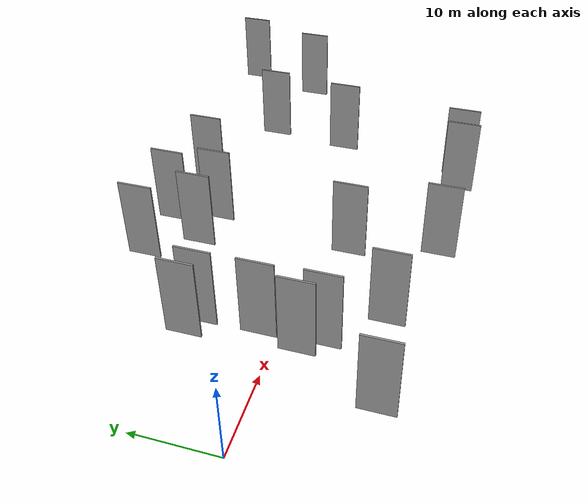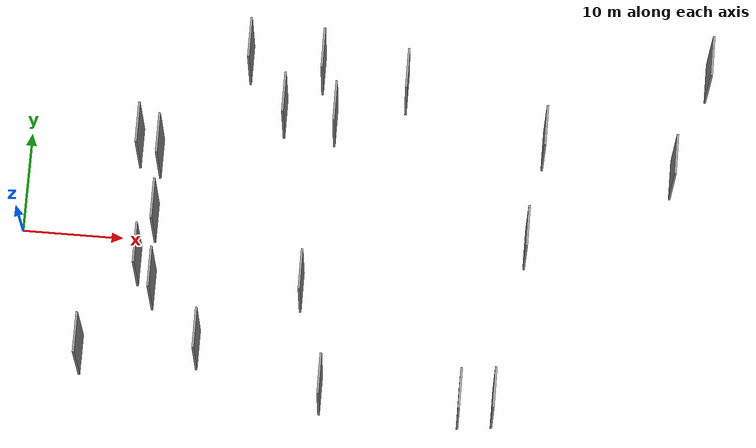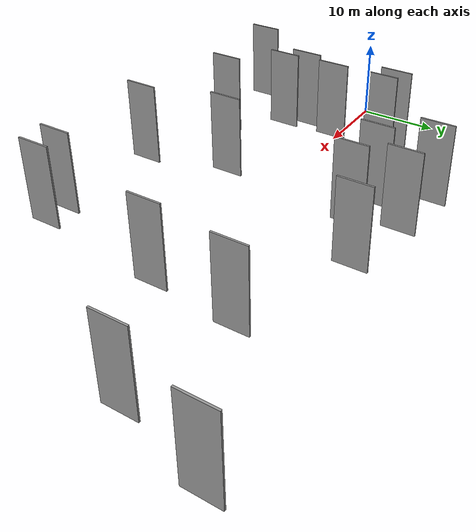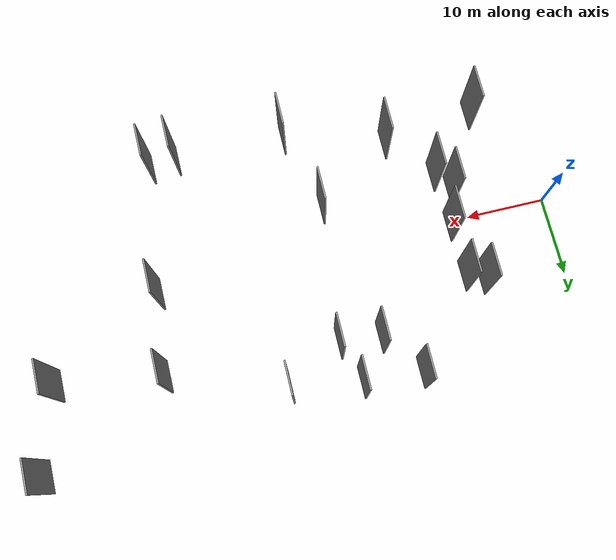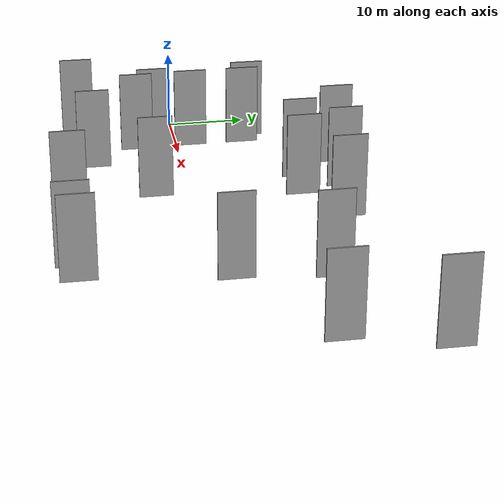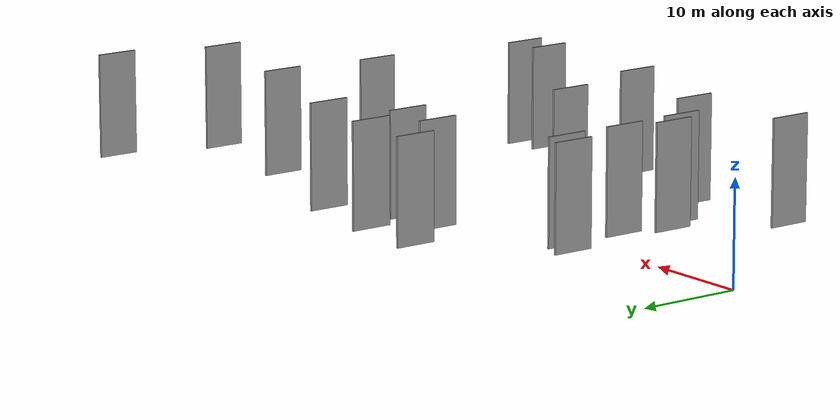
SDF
<sdf version="1.6">
 <world name="default">
  <scene>
   <sky><clouds><speed>12</speed></clouds></sky>
   <ambient>0.4 0.4 0.4 1</ambient>
   <background>0.7 0.7 0.7 1</background>
   <shadows>1</shadows>
  </scene>
  <gravity>0 0 -9.8066</gravity>
  <magnetic_field>6e-06 2.3e-05 -4.2e-05</magnetic_field>
  <physics default="0" name="default_physics" type="ode">
   <ode>
    <solver>
     <type>quick</type>
     <iters>10</iters>
     <sor>1.0</sor>
     <use_dynamic_moi_rescaling>0</use_dynamic_moi_rescaling>
    </solver>
    <constraints>
     <cfm>0</cfm>
     <erp>0.2</erp>
     <contact_max_correcting_vel>100</contact_max_correcting_vel>
     <contact_surface_layer>0.001</contact_surface_layer>
    </constraints>
   </ode>
   <max_step_size>0.004</max_step_size>
   <real_time_factor>1</real_time_factor>
   <real_time_update_rate>250</real_time_update_rate>
  </physics>
  <light name="sun" type="directional">
   <pose>0 0 10 0 0 0</pose>
   <diffuse>0.8 0.8 0.8 1</diffuse>
   <specular>0.2 0.2 0.2 1</specular>
   <attenuation>
    <range>1000</range>
    <constant>0.9</constant>
    <linear>0.01</linear>
    <quadratic>0.001</quadratic>
   </attenuation>
   <direction>-0.5 0.1 -0.9</direction>
  </light>
  <model name="grey_wall_1">
   <static>1</static>
   <pose>13.3032 7.7961 2.5 0.000000 0.000000 1.570796</pose>
   <link name="link">
    <pose>0 0 5.00 0 0 0</pose>
    <collision name="collision"><geometry><box><size>4.00 0.2 10.00</size></box></geometry></collision>
    <visual name="visual">
     <cast_shadows>0</cast_shadows>
     <geometry><box><size>4.00 0.2 10.00</size></box></geometry>
     <material>
      <script>
       <uri>model://grey_wall/materials/scripts</uri>
       <uri>model://grey_wall/materials/textures</uri>
       <name>vrc/grey_wall</name>
      </script>
     </material>
    </visual>
   </link>
  </model>
  <model name="grey_wall_2">
   <static>1</static>
   <pose>11.2306 8.7210 2.5 0.000000 0.000000 1.570796</pose>
   <link name="link">
    <pose>0 0 5.00 0 0 0</pose>
    <collision name="collision"><geometry><box><size>4.00 0.2 10.00</size></box></geometry></collision>
    <visual name="visual">
     <cast_shadows>0</cast_shadows>
     <geometry><box><size>4.00 0.2 10.00</size></box></geometry>
     <material>
      <script>
       <uri>model://grey_wall/materials/scripts</uri>
       <uri>model://grey_wall/materials/textures</uri>
       <name>vrc/grey_wall</name>
      </script>
     </material>
    </visual>
   </link>
  </model>
  <model name="grey_wall_3">
   <static>1</static>
   <pose>63.8334 9.5449 2.5 0.000000 0.000000 1.570796</pose>
   <link name="link">
    <pose>0 0 5.00 0 0 0</pose>
    <collision name="collision"><geometry><box><size>4.00 0.2 10.00</size></box></geometry></collision>
    <visual name="visual">
     <cast_shadows>0</cast_shadows>
     <geometry><box><size>4.00 0.2 10.00</size></box></geometry>
     <material>
      <script>
       <uri>model://grey_wall/materials/scripts</uri>
       <uri>model://grey_wall/materials/textures</uri>
       <name>vrc/grey_wall</name>
      </script>
     </material>
    </visual>
   </link>
  </model>
  <model name="grey_wall_4">
   <static>1</static>
   <pose>18.5532 -11.3464 2.5 0.000000 0.000000 1.570796</pose>
   <link name="link">
    <pose>0 0 5.00 0 0 0</pose>
    <collision name="collision"><geometry><box><size>4.00 0.2 10.00</size></box></geometry></collision>
    <visual name="visual">
     <cast_shadows>0</cast_shadows>
     <geometry><box><size>4.00 0.2 10.00</size></box></geometry>
     <material>
      <script>
       <uri>model://grey_wall/materials/scripts</uri>
       <uri>model://grey_wall/materials/textures</uri>
       <name>vrc/grey_wall</name>
      </script>
     </material>
    </visual>
   </link>
  </model>
  <model name="grey_wall_5">
   <static>1</static>
   <pose>51.0080 11.5029 2.5 0.000000 0.000000 1.570796</pose>
   <link name="link">
    <pose>0 0 5.00 0 0 0</pose>
    <collision name="collision"><geometry><box><size>4.00 0.2 10.00</size></box></geometry></collision>
    <visual name="visual">
     <cast_shadows>0</cast_shadows>
     <geometry><box><size>4.00 0.2 10.00</size></box></geometry>
     <material>
      <script>
       <uri>model://grey_wall/materials/scripts</uri>
       <uri>model://grey_wall/materials/textures</uri>
       <name>vrc/grey_wall</name>
      </script>
     </material>
    </visual>
   </link>
  </model>
  <model name="grey_wall_6">
   <static>1</static>
   <pose>30.2593 12.3829 2.5 0.000000 0.000000 1.570796</pose>
   <link name="link">
    <pose>0 0 5.00 0 0 0</pose>
    <collision name="collision"><geometry><box><size>4.00 0.2 10.00</size></box></geometry></collision>
    <visual name="visual">
     <cast_shadows>0</cast_shadows>
     <geometry><box><size>4.00 0.2 10.00</size></box></geometry>
     <material>
      <script>
       <uri>model://grey_wall/materials/scripts</uri>
       <uri>model://grey_wall/materials/textures</uri>
       <name>vrc/grey_wall</name>
      </script>
     </material>
    </visual>
   </link>
  </model>
  <model name="grey_wall_7">
   <static>1</static>
   <pose>7.1082 -12.7027 2.5 0.000000 0.000000 1.570796</pose>
   <link name="link">
    <pose>0 0 5.00 0 0 0</pose>
    <collision name="collision"><geometry><box><size>4.00 0.2 10.00</size></box></geometry></collision>
    <visual name="visual">
     <cast_shadows>0</cast_shadows>
     <geometry><box><size>4.00 0.2 10.00</size></box></geometry>
     <material>
      <script>
       <uri>model://grey_wall/materials/scripts</uri>
       <uri>model://grey_wall/materials/textures</uri>
       <name>vrc/grey_wall</name>
      </script>
     </material>
    </visual>
   </link>
  </model>
  <model name="grey_wall_8">
   <static>1</static>
   <pose>21.4354 18.1514 2.5 0.000000 0.000000 1.570796</pose>
   <link name="link">
    <pose>0 0 5.00 0 0 0</pose>
    <collision name="collision"><geometry><box><size>4.00 0.2 10.00</size></box></geometry></collision>
    <visual name="visual">
     <cast_shadows>0</cast_shadows>
     <geometry><box><size>4.00 0.2 10.00</size></box></geometry>
     <material>
      <script>
       <uri>model://grey_wall/materials/scripts</uri>
       <uri>model://grey_wall/materials/textures</uri>
       <name>vrc/grey_wall</name>
      </script>
     </material>
    </visual>
   </link>
  </model>
  <model name="grey_wall_9">
   <static>1</static>
   <pose>13.6842 -5.6395 2.5 0.000000 0.000000 1.570796</pose>
   <link name="link">
    <pose>0 0 5.00 0 0 0</pose>
    <collision name="collision"><geometry><box><size>4.00 0.2 10.00</size></box></geometry></collision>
    <visual name="visual">
     <cast_shadows>0</cast_shadows>
     <geometry><box><size>4.00 0.2 10.00</size></box></geometry>
     <material>
      <script>
       <uri>model://grey_wall/materials/scripts</uri>
       <uri>model://grey_wall/materials/textures</uri>
       <name>vrc/grey_wall</name>
      </script>
     </material>
    </visual>
   </link>
  </model>
  <model name="grey_wall_10">
   <static>1</static>
   <pose>25.2062 12.8764 2.5 0.000000 0.000000 1.570796</pose>
   <link name="link">
    <pose>0 0 5.00 0 0 0</pose>
    <collision name="collision"><geometry><box><size>4.00 0.2 10.00</size></box></geometry></collision>
    <visual name="visual">
     <cast_shadows>0</cast_shadows>
     <geometry><box><size>4.00 0.2 10.00</size></box></geometry>
     <material>
      <script>
       <uri>model://grey_wall/materials/scripts</uri>
       <uri>model://grey_wall/materials/textures</uri>
       <name>vrc/grey_wall</name>
      </script>
     </material>
    </visual>
   </link>
  </model>
  <model name="grey_wall_11">
   <static>1</static>
   <pose>13.3666 1.2053 2.5 0.000000 0.000000 1.570796</pose>
   <link name="link">
    <pose>0 0 5.00 0 0 0</pose>
    <collision name="collision"><geometry><box><size>4.00 0.2 10.00</size></box></geometry></collision>
    <visual name="visual">
     <cast_shadows>0</cast_shadows>
     <geometry><box><size>4.00 0.2 10.00</size></box></geometry>
     <material>
      <script>
       <uri>model://grey_wall/materials/scripts</uri>
       <uri>model://grey_wall/materials/textures</uri>
       <name>vrc/grey_wall</name>
      </script>
     </material>
    </visual>
   </link>
  </model>
  <model name="grey_wall_12">
   <static>1</static>
   <pose>28.6736 17.6413 2.5 0.000000 0.000000 1.570796</pose>
   <link name="link">
    <pose>0 0 5.00 0 0 0</pose>
    <collision name="collision"><geometry><box><size>4.00 0.2 10.00</size></box></geometry></collision>
    <visual name="visual">
     <cast_shadows>0</cast_shadows>
     <geometry><box><size>4.00 0.2 10.00</size></box></geometry>
     <material>
      <script>
       <uri>model://grey_wall/materials/scripts</uri>
       <uri>model://grey_wall/materials/textures</uri>
       <name>vrc/grey_wall</name>
      </script>
     </material>
    </visual>
   </link>
  </model>
  <model name="grey_wall_13">
   <static>1</static>
   <pose>66.7551 19.7729 2.5 0.000000 0.000000 1.570796</pose>
   <link name="link">
    <pose>0 0 5.00 0 0 0</pose>
    <collision name="collision"><geometry><box><size>4.00 0.2 10.00</size></box></geometry></collision>
    <visual name="visual">
     <cast_shadows>0</cast_shadows>
     <geometry><box><size>4.00 0.2 10.00</size></box></geometry>
     <material>
      <script>
       <uri>model://grey_wall/materials/scripts</uri>
       <uri>model://grey_wall/materials/textures</uri>
       <name>vrc/grey_wall</name>
      </script>
     </material>
    </visual>
   </link>
  </model>
  <model name="grey_wall_14">
   <static>1</static>
   <pose>28.2685 -4.7588 2.5 0.000000 0.000000 1.570796</pose>
   <link name="link">
    <pose>0 0 5.00 0 0 0</pose>
    <collision name="collision"><geometry><box><size>4.00 0.2 10.00</size></box></geometry></collision>
    <visual name="visual">
     <cast_shadows>0</cast_shadows>
     <geometry><box><size>4.00 0.2 10.00</size></box></geometry>
     <material>
      <script>
       <uri>model://grey_wall/materials/scripts</uri>
       <uri>model://grey_wall/materials/textures</uri>
       <name>vrc/grey_wall</name>
      </script>
     </material>
    </visual>
   </link>
  </model>
  <model name="grey_wall_15">
   <static>1</static>
   <pose>47.8489 -14.9635 2.5 0.000000 0.000000 1.570796</pose>
   <link name="link">
    <pose>0 0 5.00 0 0 0</pose>
    <collision name="collision"><geometry><box><size>4.00 0.2 10.00</size></box></geometry></collision>
    <visual name="visual">
     <cast_shadows>0</cast_shadows>
     <geometry><box><size>4.00 0.2 10.00</size></box></geometry>
     <material>
      <script>
       <uri>model://grey_wall/materials/scripts</uri>
       <uri>model://grey_wall/materials/textures</uri>
       <name>vrc/grey_wall</name>
      </script>
     </material>
    </visual>
   </link>
  </model>
  <model name="grey_wall_16">
   <static>1</static>
   <pose>30.9145 -14.9462 2.5 0.000000 0.000000 1.570796</pose>
   <link name="link">
    <pose>0 0 5.00 0 0 0</pose>
    <collision name="collision"><geometry><box><size>4.00 0.2 10.00</size></box></geometry></collision>
    <visual name="visual">
     <cast_shadows>0</cast_shadows>
     <geometry><box><size>4.00 0.2 10.00</size></box></geometry>
     <material>
      <script>
       <uri>model://grey_wall/materials/scripts</uri>
       <uri>model://grey_wall/materials/textures</uri>
       <name>vrc/grey_wall</name>
      </script>
     </material>
    </visual>
   </link>
  </model>
  <model name="grey_wall_17">
   <static>1</static>
   <pose>37.0760 16.2253 2.5 0.000000 0.000000 1.570796</pose>
   <link name="link">
    <pose>0 0 5.00 0 0 0</pose>
    <collision name="collision"><geometry><box><size>4.00 0.2 10.00</size></box></geometry></collision>
    <visual name="visual">
     <cast_shadows>0</cast_shadows>
     <geometry><box><size>4.00 0.2 10.00</size></box></geometry>
     <material>
      <script>
       <uri>model://grey_wall/materials/scripts</uri>
       <uri>model://grey_wall/materials/textures</uri>
       <name>vrc/grey_wall</name>
      </script>
     </material>
    </visual>
   </link>
  </model>
  <model name="grey_wall_18">
   <static>1</static>
   <pose>49.9279 1.2897 2.5 0.000000 0.000000 1.570796</pose>
   <link name="link">
    <pose>0 0 5.00 0 0 0</pose>
    <collision name="collision"><geometry><box><size>4.00 0.2 10.00</size></box></geometry></collision>
    <visual name="visual">
     <cast_shadows>0</cast_shadows>
     <geometry><box><size>4.00 0.2 10.00</size></box></geometry>
     <material>
      <script>
       <uri>model://grey_wall/materials/scripts</uri>
       <uri>model://grey_wall/materials/textures</uri>
       <name>vrc/grey_wall</name>
      </script>
     </material>
    </visual>
   </link>
  </model>
  <model name="grey_wall_19">
   <static>1</static>
   <pose>44.5378 -15.3018 2.5 0.000000 0.000000 1.570796</pose>
   <link name="link">
    <pose>0 0 5.00 0 0 0</pose>
    <collision name="collision"><geometry><box><size>4.00 0.2 10.00</size></box></geometry></collision>
    <visual name="visual">
     <cast_shadows>0</cast_shadows>
     <geometry><box><size>4.00 0.2 10.00</size></box></geometry>
     <material>
      <script>
       <uri>model://grey_wall/materials/scripts</uri>
       <uri>model://grey_wall/materials/textures</uri>
       <name>vrc/grey_wall</name>
      </script>
     </material>
    </visual>
   </link>
  </model>
  <model name="grey_wall_20">
   <static>1</static>
   <pose>12.0543 -3.3591 2.5 0.000000 0.000000 1.570796</pose>
   <link name="link">
    <pose>0 0 5.00 0 0 0</pose>
    <collision name="collision"><geometry><box><size>4.00 0.2 10.00</size></box></geometry></collision>
    <visual name="visual">
     <cast_shadows>0</cast_shadows>
     <geometry><box><size>4.00 0.2 10.00</size></box></geometry>
     <material>
      <script>
       <uri>model://grey_wall/materials/scripts</uri>
       <uri>model://grey_wall/materials/textures</uri>
       <name>vrc/grey_wall</name>
      </script>
     </material>
    </visual>
   </link>
  </model>
 </world>
</sdf>
